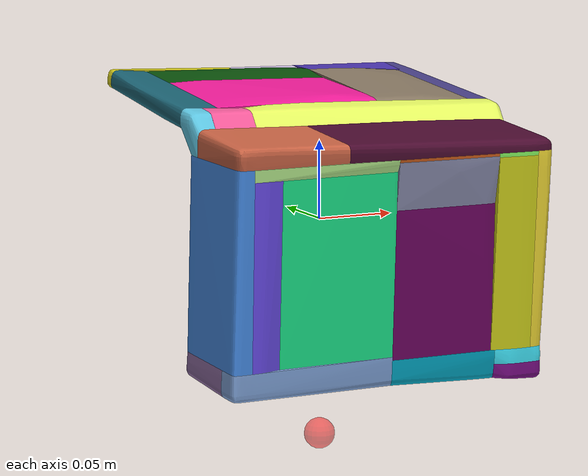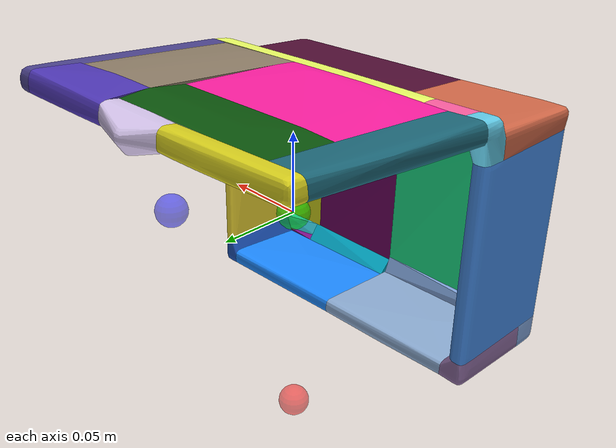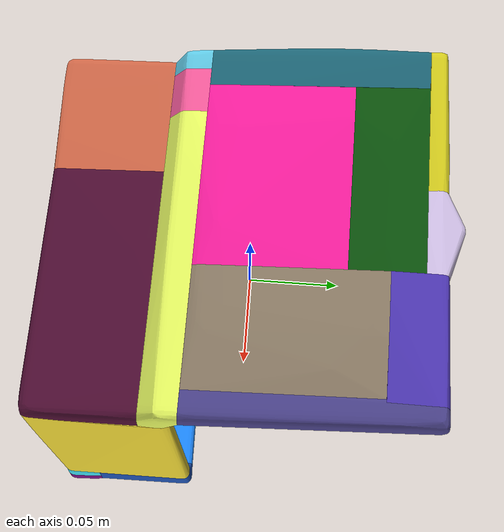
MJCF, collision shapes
<mujoco model="box">
  <default>
    <default class="visual">
      <geom group="1"  solref="0.02 1" solimp="0.9 0.95 0.001" type="mesh" contype="0" conaffinity="0"/>
    </default>
    <default class="collision">
      <geom group="0"  solref="0.02 1" solimp="0.9 0.95 0.001" type="mesh"/>
    </default>
  </default>

  <asset>
    <texture type="2d" name="box" file="box.png"/>
    <material name="Material" texture="box" specular="0.5" shininess="0.25"/>

    <!-- Visual mesh -->
    <mesh name="box" file="box.obj" scale="0.11 0.11 0.11"/>

    <!-- Collision meshes -->
    <mesh name="box_collision_0" file="box_collision_0.obj" scale="0.11 0.11 0.11"/>
    <mesh name="box_collision_1" file="box_collision_1.obj" scale="0.11 0.11 0.11"/>
    <mesh name="box_collision_2" file="box_collision_2.obj" scale="0.11 0.11 0.11"/>
    <mesh name="box_collision_3" file="box_collision_3.obj" scale="0.11 0.11 0.11"/>
    <mesh name="box_collision_4" file="box_collision_4.obj" scale="0.11 0.11 0.11"/>
    <mesh name="box_collision_5" file="box_collision_5.obj" scale="0.11 0.11 0.11"/>
    <mesh name="box_collision_6" file="box_collision_6.obj" scale="0.11 0.11 0.11"/>
    <mesh name="box_collision_7" file="box_collision_7.obj" scale="0.11 0.11 0.11"/>
    <mesh name="box_collision_8" file="box_collision_8.obj" scale="0.11 0.11 0.11"/>
    <mesh name="box_collision_9" file="box_collision_9.obj" scale="0.11 0.11 0.11"/>
    <mesh name="box_collision_10" file="box_collision_10.obj" scale="0.11 0.11 0.11"/>
    <mesh name="box_collision_11" file="box_collision_11.obj" scale="0.11 0.11 0.11"/>
    <mesh name="box_collision_12" file="box_collision_12.obj" scale="0.11 0.11 0.11"/>
    <mesh name="box_collision_13" file="box_collision_13.obj" scale="0.11 0.11 0.11"/>
    <mesh name="box_collision_14" file="box_collision_14.obj" scale="0.11 0.11 0.11"/>
    <mesh name="box_collision_15" file="box_collision_15.obj" scale="0.11 0.11 0.11"/>
    <mesh name="box_collision_16" file="box_collision_16.obj" scale="0.11 0.11 0.11"/>
    <mesh name="box_collision_17" file="box_collision_17.obj" scale="0.11 0.11 0.11"/>
    <mesh name="box_collision_18" file="box_collision_18.obj" scale="0.11 0.11 0.11"/>
    <mesh name="box_collision_19" file="box_collision_19.obj" scale="0.11 0.11 0.11"/>
    <mesh name="box_collision_20" file="box_collision_20.obj" scale="0.11 0.11 0.11"/>
    <mesh name="box_collision_21" file="box_collision_21.obj" scale="0.11 0.11 0.11"/>
    <mesh name="box_collision_22" file="box_collision_22.obj" scale="0.11 0.11 0.11"/>
    <mesh name="box_collision_23" file="box_collision_23.obj" scale="0.11 0.11 0.11"/>
    <mesh name="box_collision_24" file="box_collision_24.obj" scale="0.11 0.11 0.11"/>
    <mesh name="box_collision_25" file="box_collision_25.obj" scale="0.11 0.11 0.11"/>
    <mesh name="box_collision_26" file="box_collision_26.obj" scale="0.11 0.11 0.11"/>
    <mesh name="box_collision_27" file="box_collision_27.obj" scale="0.11 0.11 0.11"/>
    <mesh name="box_collision_28" file="box_collision_28.obj" scale="0.11 0.11 0.11"/>
    <mesh name="box_collision_29" file="box_collision_29.obj" scale="0.11 0.11 0.11"/>
    <mesh name="box_collision_30" file="box_collision_30.obj" scale="0.11 0.11 0.11"/>
    <mesh name="box_collision_31" file="box_collision_31.obj" scale="0.11 0.11 0.11"/>
  </asset>

  <worldbody>
    <!-- Main container body with sites -->
    <body name="container">
      <!-- Three required sites for manipulation tasks -->
      <site name="bottom_site" pos="0 0.0 -0.14" size="0.01" rgba="1 0 0 0.5"/>
      <site name="top_site" pos="0 0 0.0" size="0.01" rgba="0 1 0 0.5"/>
      <site name="horizontal_radius_site" pos="0.05 0.05 0" size="0.01" rgba="0 0 1 0.5"/>
      <!-- Object body -->
      <body name="object">
      <site type="box" pos="0.01000 -0.06 -0.03" quat="0.00000 0.00000 0.00000 1.00000" size="0.075 0.075 0.06949" group="0" rgba="0.8 0 0 0" name="contain_region"/>
        <!-- Visual geometry -->
        <geom material="Material" mesh="box" group="1" type="mesh" contype="0" conaffinity="0" density="1000"/>

        <!-- Collision geometries -->
        <geom mesh="box_collision_0" rgba="0.5046905420101823 0.6462405940749628 0.8582325294476613 0" group="0"  solref="0.02 1" solimp="0.9 0.95 0.001" type="mesh" density="1000"/>
        <geom mesh="box_collision_1" rgba="0.8191558383321568 0.40682171409852985 0.2819093002146027 0" group="0"  solref="0.02 1" solimp="0.9 0.95 0.001" type="mesh" density="1000"/>
        <geom mesh="box_collision_2" rgba="0.9225222743572898 0.9964208368082623 0.3927468455014451 0" group="0"  solref="0.02 1" solimp="0.9 0.95 0.001" type="mesh" density="1000"/>
        <geom mesh="box_collision_3" rgba="0.3095243173011566 0.052192370537778365 0.20084480195967036 0" group="0"  solref="0.02 1" solimp="0.9 0.95 0.001" type="mesh" density="1000"/>
        <geom mesh="box_collision_4" rgba="0.28240873049720516 0.5654320919811576 0.9239092189509723 0" group="0"  solref="0.02 1" solimp="0.9 0.95 0.001" type="mesh" density="1000"/>
        <geom mesh="box_collision_5" rgba="0.5520255658548299 0.4213243069628698 0.6267697680825193 0" group="0"  solref="0.02 1" solimp="0.9 0.95 0.001" type="mesh" density="1000"/>
        <geom mesh="box_collision_6" rgba="0.2915835446389665 0.25895148519190003 0.5432239796270516 0" group="0"  solref="0.02 1" solimp="0.9 0.95 0.001" type="mesh" density="1000"/>
        <geom mesh="box_collision_7" rgba="0.007052686128652508 0.6698620867825904 0.7848223380878389 0" group="0"  solref="0.02 1" solimp="0.9 0.95 0.001" type="mesh" density="1000"/>
        <geom mesh="box_collision_8" rgba="0.8280541425506893 0.7636484921580788 0.9167408700848512 0" group="0"  solref="0.02 1" solimp="0.9 0.95 0.001" type="mesh" density="1000"/>
        <geom mesh="box_collision_9" rgba="0.9808349637010225 0.36320589315499496 0.6224509351808817 0" group="0"  solref="0.02 1" solimp="0.9 0.95 0.001" type="mesh" density="1000"/>
        <geom mesh="box_collision_10" rgba="0.30491125636826855 0.2130123406479576 0.7058787676666787 0" group="0"  solref="0.02 1" solimp="0.9 0.95 0.001" type="mesh" density="1000"/>
        <geom mesh="box_collision_11" rgba="0.11825884079305512 0.3286622330516926 0.7271335745682395 0" group="0"  solref="0.02 1" solimp="0.9 0.95 0.001" type="mesh" density="1000"/>
        <geom mesh="box_collision_12" rgba="0.11094880137292834 0.456197837826926 0.02043721068553217 0" group="0"  solref="0.02 1" solimp="0.9 0.95 0.001" type="mesh" density="1000"/>
        <geom mesh="box_collision_13" rgba="0.113461822781751331 0.4041440640889916 0.4713657546564015 0" group="0"  solref="0.02 1" solimp="0.9 0.95 0.001" type="mesh" density="1000"/>
        <geom mesh="box_collision_14" rgba="0.37928172435651986 0.8009505720655065 0.9129032989810401 0" group="0"  solref="0.02 1" solimp="0.9 0.95 0.001" type="mesh" density="1000"/>
        <geom mesh="box_collision_15" rgba="0.5451054095094956 0.6673666145092759 0.8185902545471154 0" group="0"  solref="0.02 1" solimp="0.9 0.95 0.001" type="mesh" density="1000"/>
        <geom mesh="box_collision_16" rgba="0.112149718443807533 0.5377486038084315 0.9972194261546379 0" group="0"  solref="0.02 1" solimp="0.9 0.95 0.001" type="mesh" density="1000"/>
        <geom mesh="box_collision_17" rgba="0.43149071798769534 0.018501916433846688 0.38389455794590754 0" group="0"  solref="0.02 1" solimp="0.9 0.95 0.001" type="mesh" density="1000"/>
        <geom mesh="box_collision_18" rgba="0.8425243339506352 0.808101183187101 0.115572940387418255 0" group="0"  solref="0.02 1" solimp="0.9 0.95 0.001" type="mesh" density="1000"/>
        <geom mesh="box_collision_19" rgba="0.5528260034050724 0.48877390397937404 0.40265733482093413 0" group="0"  solref="0.02 1" solimp="0.9 0.95 0.001" type="mesh" density="1000"/>
        <geom mesh="box_collision_20" rgba="0.9762045243162257 0.8793423643821606 0.21671345130076214 0" group="0"  solref="0.02 1" solimp="0.9 0.95 0.001" type="mesh" density="1000"/>
        <geom mesh="box_collision_21" rgba="0.25804006890593567 0.9094719489586485 0.9881570906893613 0" group="0"  solref="0.02 1" solimp="0.9 0.95 0.001" type="mesh" density="1000"/>
        <geom mesh="box_collision_22" rgba="0.4957613754476863 0.06299374076470188 0.5434332042134473 0" group="0"  solref="0.02 1" solimp="0.9 0.95 0.001" type="mesh" density="1000"/>
        <geom mesh="box_collision_23" rgba="0.8186396666960446 0.3763876426566889 0.11326668802583265 0" group="0"  solref="0.02 1" solimp="0.9 0.95 0.001" type="mesh" density="1000"/>
        <geom mesh="box_collision_24" rgba="0.5253640692555565 0.9727277142728081 0.378411266400804 0" group="0"  solref="0.02 1" solimp="0.9 0.95 0.001" type="mesh" density="1000"/>
        <geom mesh="box_collision_25" rgba="0.5627199979252363 0.5750021556749481 0.709342618836145 0" group="0"  solref="0.02 1" solimp="0.9 0.95 0.001" type="mesh" density="1000"/>
        <geom mesh="box_collision_26" rgba="0.7488304747835514 0.9687459210486796 0.5805231829127443 0" group="0"  solref="0.02 1" solimp="0.9 0.95 0.001" type="mesh" density="1000"/>
        <geom mesh="box_collision_27" rgba="0.42638737998248777 0.30793189806504084 0.9425406052970271 0" group="0"  solref="0.02 1" solimp="0.9 0.95 0.001" type="mesh" density="1000"/>
        <geom mesh="box_collision_28" rgba="0.04246420188759614 0.32511196691006194 0.04509928020016807 0" group="0"  solref="0.02 1" solimp="0.9 0.95 0.001" type="mesh" density="1000"/>
        <geom mesh="box_collision_29" rgba="0.8336139078849629 0.8418195563942655 0.111157227192648456 0" group="0"  solref="0.02 1" solimp="0.9 0.95 0.001" type="mesh" density="1000"/>
        <geom mesh="box_collision_30" rgba="0.9818272630155849 0.11103079601893927 0.6277320160274831 0" group="0"  solref="0.02 1" solimp="0.9 0.95 0.001" type="mesh" density="1000"/>
        <geom mesh="box_collision_31" rgba="0.110095240383786874 0.9156765699348564 0.5567000547227378 0" group="0"  solref="0.02 1" solimp="0.9 0.95 0.001" type="mesh" density="1000"/>
      </body>
    </body>
  </worldbody>
</mujoco>
